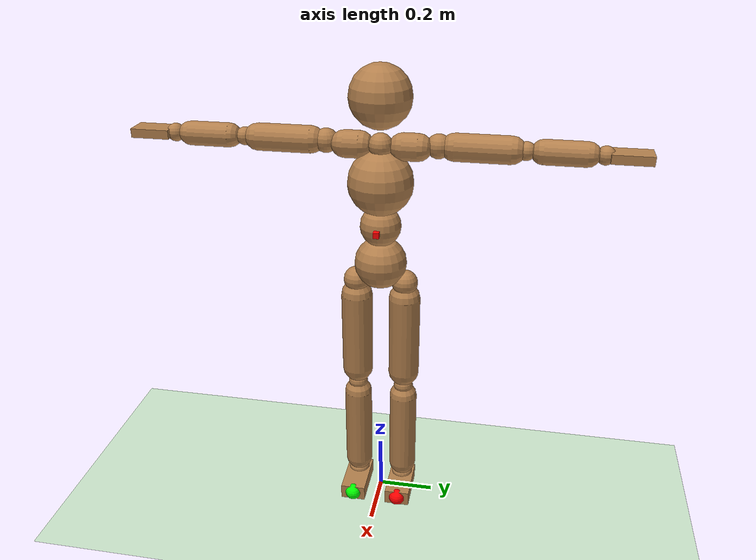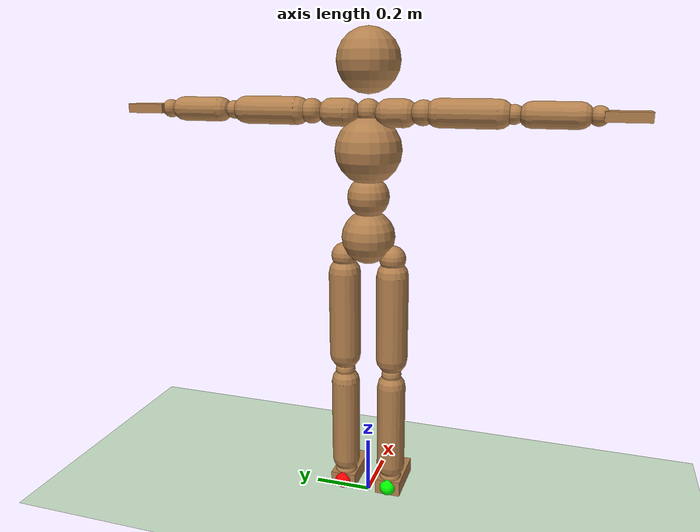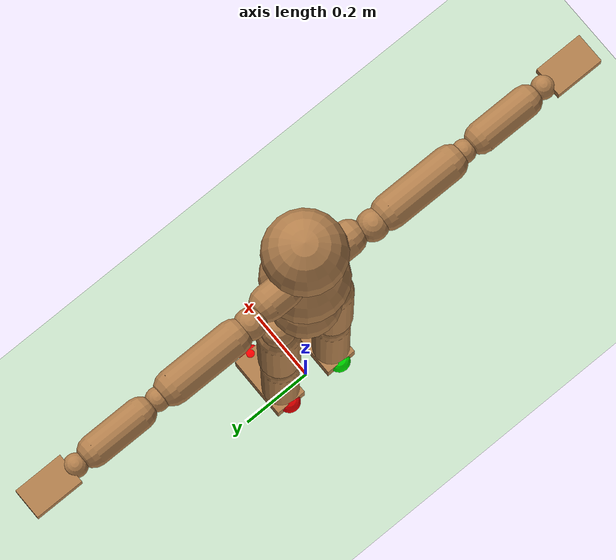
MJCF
<mujoco model="humanoid">
    <compiler angle="radian" inertiafromgeom="true"/>
    <default>
        <joint limited="true" armature="1" damping="1"/>
        <geom conaffinity="1" condim="1" contype="1" margin="0.001" rgba="0.7 0.5 .3 1"/>
        <site rgba="0.7 0.5 0.3 1"/>
        <motor ctrllimited="true" ctrlrange="-0.5 0.5"/>
    </default>
    <option integrator="Euler" iterations="50" solver="PGS" timestep="0.0083332000">
    </option>
    <asset>
        <texture builtin="gradient" height="100" rgb1=".4 .5 .6" rgb2="0 0 0" type="skybox" width="100"/>
        <texture builtin="flat" height="1278" mark="cross" markrgb="1 1 1" name="texgeom" random="0.01" rgb1="0.8 0.6 0.4" rgb2="0.8 0.6 0.4" type="cube" width="127"/>
        <texture name="grid" type="2d" builtin="checker" rgb1=".1 .2 .3" rgb2=".2 .3 .4" width="300" height="300" mark="edge" markrgb=".2 .3 .4"/>
        <material name="MatPlane" reflectance="0.2" texrepeat="1 1" texuniform="true" texture="grid"/>
        <material name="geom" texture="texgeom" texuniform="true"/>
    </asset>
    <worldbody>
        <geom condim="3" friction="1 .1 .1" material="MatPlane" name="floor" pos="0 0 0" rgba="0.8 0.9 0.8 1" size="50 50 0.2" type="plane"/>
        <light name="light" cutoff="100" diffuse="1 1 1" dir="-0 0 -1.3" directional="true" exponent="1" pos="0 0 1.3" specular=".1 .1 .1"/>
        <body name="root" pos="0 0 0.9">
            <geom name="root" mass="6.0" pos="0 0 0.07" size=".09" type="sphere"/>
            <camera name="back" pos="-3 0 1" xyaxes="0 -1 0 1 0 2" mode="trackcom"/>
            <camera name="side" pos="0 -3 1" xyaxes="1 0 0 0 1 2" mode="trackcom"/>
            <joint armature="0" damping="0" limited="false" name="root" pos="0 0 0" stiffness="0" type="free"/>
            <site name="joint_waist" pos="0 0 0.205" size="0.07" type="sphere"/>
            <site name="joint_front_x" rgba='1 0 0 1' pos="0.08 0 0.205" size="0.01 0.01 0.01" type="box"/>
            <body name="chest" pos="0 0 0.236151">
                <geom name="chest" mass="14.0" pos="0 0 0.12" size=".11" type="sphere"/>
                <joint name="chest_x" axis="1 0 0" pos="0 0 0" range="-1.2 1.2" type="hinge"/>
                <joint name="chest_y" axis="0 1 0" pos="0 0 0" range="-1.2 1.2" type="hinge"/>
                <joint name="chest_z" axis="0 0 1" pos="0 0 0" range="-1.2 1.2" type="hinge"/>
                <body name="neck" pos="0 0 0.223894">
                    <geom name="neck" mass="2.0" pos="0 0 0.175" size=".1025" type="sphere"/>
                    <joint name="neck_x" axis="1 0 0" pos="0 0 0" range="-1.0 1.0" type="hinge"/>
                    <joint name="neck_y" axis="0 1 0" pos="0 0 0" range="-1.0 1.0" type="hinge"/>
                    <joint name="neck_z" axis="0 0 1" pos="0 0 0" range="-1.0 1.0" type="hinge"/>
                    <site name="joint_neck" pos="0 0 0.02" size="0.04" type="sphere"/>
                </body>
                <site name="right_clavicle" euler="-1.57 0 0" pos="-0.011 -0.095 0.24" size="0.045 0.025" type="capsule"/>
                <body name="right_shoulder" pos="-0.02405 -0.18311 0.2435">
                    <geom fromto="0 -0.05 0 0 -0.23 0" name="right_shoulder" mass="1.5" size="0.045" type="capsule"/>
                    <site name="joint_right_shoulder" pos="0 0 0" size="0.04" type="sphere"/>
                    <joint name="right_shoulder_x" axis="1 0 0" pos="0 0 0" range="-1.57 2.07" type="hinge"/>
                    <joint name="right_shoulder_y" axis="0 1 0" pos="0 0 0" range="-1.5 1.5" type="hinge"/>
                    <joint name="right_shoulder_z" axis="0 0 1" pos="0 0 0" range="-0.7 3.14" type="hinge"/>
                    <body name="right_elbow" pos="0 -0.274788 0">
                        <geom fromto="0 -0.0525 0 0 -0.1875 0" name="right_elbow" mass="1.0" size="0.04" type="capsule"/>
                        <joint axis="0 0 1" name="right_elbow_z" pos="0 0 0" range="0 2.8" type="hinge"/>
						<joint axis="0 1 0" name="right_elbow_y" pos="0 0 0" range="-1.57 0.2" type="hinge"/>
                        <site name="joint_right_elbow" pos="0 0 0" size="0.03" type="sphere"/>
						<body name="right_wrist" pos="0 -0.240947 0">
							<site name="right_wrist" pos="0 0 0" size="0.03" type="sphere"/>
							<joint axis="1 0 0" name="right_wrist_x" pos = "0 0 0" range="-1.5 1.5" type="hinge"/>
							<joint axis="0 0 1" name="right_wrist_z" pos = "0 0 0" range="-0.5 0.5" type="hinge"/>
							<geom name="right_palm" mass="0.5" pos="0 -0.078 0" size="0.04 0.065 0.015" type="box"/>
						</body>
                    </body>
                </body>
                <site name="left_clavicle" euler="-1.57 0 0" pos="-0.011 0.095 0.24" size="0.045 0.025" type="capsule"/>
                <body name="left_shoulder" pos="-0.02405 0.18311 0.2435">
                    <geom fromto="0 0.05 0 0 0.23 0" name="left_shoulder" mass="1.5" size="0.045" type="capsule"/>
                    <joint name="left_shoulder_x" axis="1 0 0" pos="0 0 0" range="-2.07 1.57"  type="hinge"/>
                    <joint name="left_shoulder_y" axis="0 1 0" pos="0 0 0" range="-1.5 1.5"  type="hinge"/>
                    <joint name="left_shoulder_z" axis="0 0 1" pos="0 0 0" range="-3.14 0.7"  type="hinge"/>
                    <site name="joint_left_shoulder" pos="0 0 0" size="0.04" type="sphere"/>
                    <body name="left_elbow" pos="0 0.274788 0">
                        <geom fromto="0 0.0525 0 0 0.1875 0" name="left_elbow" mass="1.0" size="0.04" type="capsule"/>
                        <joint axis="0 0 1" name="left_elbow_z" pos="0 0 0" range="-2.8 0" type="hinge"/>
						<joint axis="0 1 0" name="left_elbow_y" pos="0 0 0" range="-1.57 0.2" type="hinge"/>
                        <site name="joint_left_elbow" pos="0 0 0" size="0.03" type="sphere"/>
						<body name="left_wrist" pos="0 0.240947 0">
							<site name="left_wrist" pos="0 0 0" size="0.03" type="sphere"/>
							<joint axis="1 0 0" name="left_wrist_x" pos = "0 0 0" range="-1.5 1.5" type="hinge"/>
							<joint axis="0 0 1" name="left_wrist_z" pos = "0 0 0" range="-0.5 0.5" type="hinge"/>
							<geom name="left_palm" mass="0.5" pos="0 0.078 0" size="0.04 0.065 0.015" type="box"/>
						</body>
                    </body>
                </body>
            </body>
            <body name="right_hip" pos="0 -0.084887 0">
                <geom fromto="0 0 -0.06 0 0 -0.36" name="right_hip" mass="4.5" size="0.055" type="capsule"/>
                <site name="joint_right_hip" pos="0 0 0" size="0.045" type="sphere"/>
                <joint name="right_hip_x" axis="1 0 0" pos="0 0 0" range="-1.2 1.2" type="hinge"/>
                <joint name="right_hip_y" axis="0 1 0" pos="0 0 0" range="-2.57 1.57" type="hinge"/>
                <joint name="right_hip_z" axis="0 0 1" pos="0 0 0" range=" -1.0 1.0" type="hinge"/>
                <body name="right_knee" pos="0 0 -0.421546">
                    <geom fromto="0 0 -0.045 0 0 -0.355" name="right_knee" mass="3.0" size="0.05" type="capsule"/>
                    <site name="joint_right_knee" pos="0 0 0" size="0.035" type="sphere"/>
                    <joint axis="0 -1 0" name="right_knee" pos="0 0 0" range="-2.7 0.0" type="hinge"/>
                    <body name="right_ankle" pos="0 0 -0.40987">
                        <joint name="right_ankle_x" axis="1 0 0" pos="0 0 0" range="-1.0 1.0" type="hinge"/>
                        <joint name="right_ankle_y" axis="0 1 0" pos="0 0 0" range="-1.0 1.57" type="hinge"/>
                        <joint name="right_ankle_z" axis="0 0 1" pos="0 0 0" range="-1.0 1.0" type="hinge"/>
                        <site name="joint_right_ankle" pos="0 0 0" size="0.04" type="sphere"/>
                        <geom name="right_foot" mass="1.0" pos="0.045 0 -0.0225" size="0.0885 0.045 0.0275" type="box"/>
                        <site name="right_toe" pos="0.125 0 -0.0225" size="0.03" type="sphere" rgba="0 1 0 1"/>
                        <site name="right_heel" pos="-0.035 0 -0.0225" size="0.03" type="sphere" rgba="0 1 0 1"/>
                    </body>
                </body>
            </body>
            <body name="left_hip" pos="0 0.084887 0">
                <geom fromto="0 0 -0.06 0 0 -0.36" name="left_hip" mass="4.5" size="0.055" type="capsule"/>
                <site name="joint_left_hip" pos="0 0 0" size="0.045" type="sphere"/>
                <joint name="left_hip_x" axis="1 0 0" pos="0 0 0" range="-1.2 1.2" type="hinge"/>
                <joint name="left_hip_y" axis="0 1 0" pos="0 0 0" range="-2.57 1.57" type="hinge"/>
                <joint name="left_hip_z" axis="0 0 1" pos="0 0 0" range="-1.0 1.0" type="hinge"/>
                <body name="left_knee" pos="0 0 -0.421546">
                    <geom fromto="0 0 -0.045 0 0 -0.355" name="left_knee" mass="3.0" size="0.05" type="capsule"/>
                    <site name="joint_left_knee" pos="0 0 0" size="0.035" type="sphere"/>
                    <joint axis="0 -1 0" name="left_knee" pos="0 0 0" range="-2.7 0.0" type="hinge"/>
                    <body name="left_ankle" pos="0 0 -0.40987">
                        <joint name="left_ankle_x" axis="1 0 0" pos="0 0 0" range="-1.0 1.0" type="hinge"/>
                        <joint name="left_ankle_y" axis="0 1 0" pos="0 0 0" range="-1.0 1.57" type="hinge"/>
                        <joint name="left_ankle_z" axis="0 0 1" pos="0 0 0" range="-1.0 1.0" type="hinge"/>
                        <site name="joint_left_ankle" pos="0 0 0" size="0.04" type="sphere"/>
                        <geom name="left_foot" mass="1.0" pos="0.045 0 -0.0225" size="0.0885 0.045 0.0275" type="box"/>
                        <site name="left_toe" pos="0.125 0 -0.0225" size="0.03" type="sphere" rgba="1 0 0 1"/>
                        <site name="left_heel" pos="-0.035 0 -0.0225" size="0.03" type="sphere" rgba="1 0 0 1"/>
                    </body>
                </body>
            </body>
        </body>
    </worldbody>

    <contact>
        <exclude body1="right_hip" body2="root"/>
        <exclude body1="left_hip" body2="root"/>
        <exclude body1="right_hip" body2="right_knee"/>
        <exclude body1="left_hip" body2="left_knee"/>
        <exclude body1="right_knee" body2="right_ankle"/>
        <exclude body1="left_knee" body2="left_ankle"/>
        <exclude body1="right_elbow" body2="right_shoulder"/>
        <exclude body1="left_elbow" body2="left_shoulder"/>
    </contact>

    <actuator>
        <motor gear="200" joint="chest_x" name="chest_x"/>
        <motor gear="200" joint="chest_y" name="chest_y"/>
        <motor gear="200" joint="chest_z" name="chest_z"/>
        <motor gear="50" joint="neck_x" name="neck_x"/>
        <motor gear="50" joint="neck_y" name="neck_y"/>
        <motor gear="50" joint="neck_z" name="neck_z"/>

        <motor gear="100" joint="right_shoulder_x" name="right_shoulder_x"/>
        <motor gear="100" joint="right_shoulder_y" name="right_shoulder_y"/>
        <motor gear="100" joint="right_shoulder_z" name="right_shoulder_z"/>
        <motor gear="60" joint="right_elbow_z" name="right_elbow_z"/>
		<motor gear="60" joint="right_elbow_y" name="right_elbow_y"/>
		<motor gear="60" joint="right_wrist_x" name="right_wrist_x"/>
		<motor gear="60" joint="right_wrist_z" name="right_wrist_z"/>

        <motor gear="100" joint="left_shoulder_x" name="left_shoulder_x"/>
        <motor gear="100" joint="left_shoulder_y" name="left_shoulder_y"/>
        <motor gear="100" joint="left_shoulder_z" name="left_shoulder_z"/>
        <motor gear="90" joint="left_elbow_z" name="left_elbow_z"/>
		<motor gear="90" joint="left_elbow_y" name="left_elbow_y"/>
		<motor gear="60" joint="left_wrist_x" name="left_wrist_x"/>
		<motor gear="60" joint="left_wrist_z" name="left_wrist_z"/>

        <motor gear="200" joint="right_hip_x" name="right_hip_x"/>
        <motor gear="200" joint="right_hip_y" name="right_hip_y"/>
        <motor gear="200" joint="right_hip_z" name="right_hip_z"/>

        <motor gear="150" joint="right_knee" name="right_knee"/>
        <motor gear="90" joint="right_ankle_x" name="right_ankle_x"/>
        <motor gear="90" joint="right_ankle_y" name="right_ankle_y"/>
        <motor gear="90" joint="right_ankle_z" name="right_ankle_z"/>

        <motor gear="200" joint="left_hip_x" name="left_hip_x"/>
        <motor gear="200" joint="left_hip_y" name="left_hip_y"/>
        <motor gear="200" joint="left_hip_z" name="left_hip_z"/>

        <motor gear="150" joint="left_knee" name="left_knee"/>
        <motor gear="90" joint="left_ankle_x" name="left_ankle_x"/>
        <motor gear="90" joint="left_ankle_y" name="left_ankle_y"/>
        <motor gear="90" joint="left_ankle_z" name="left_ankle_z"/>
    </actuator>
</mujoco>
